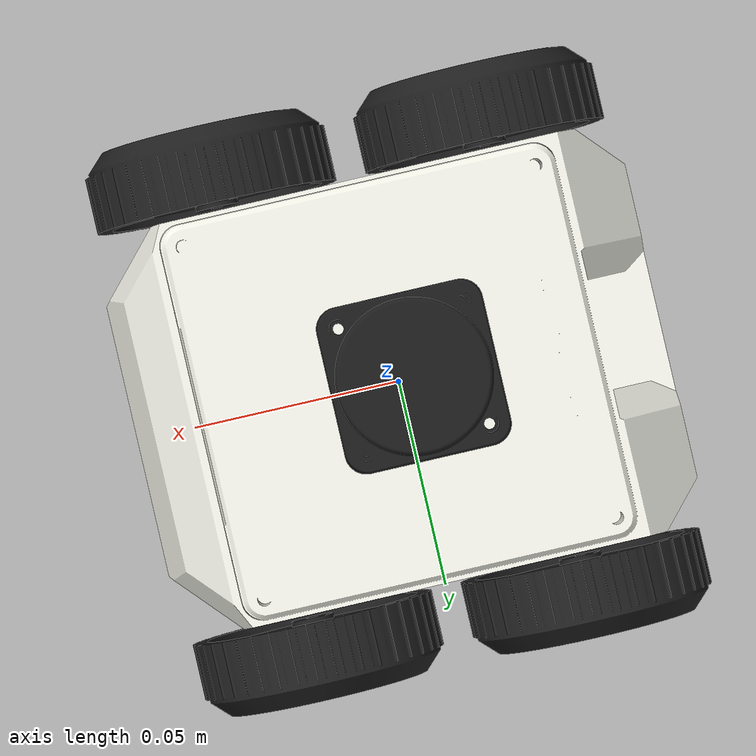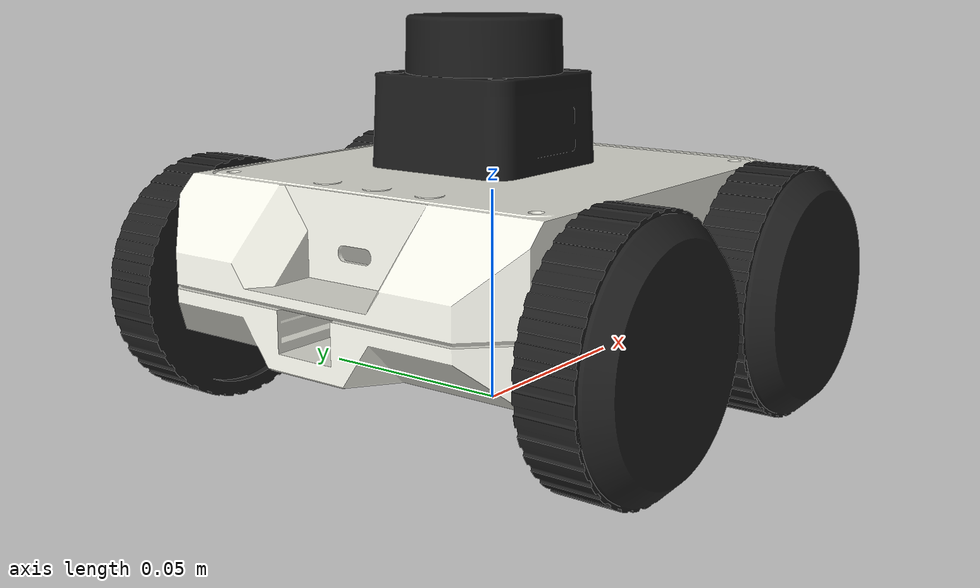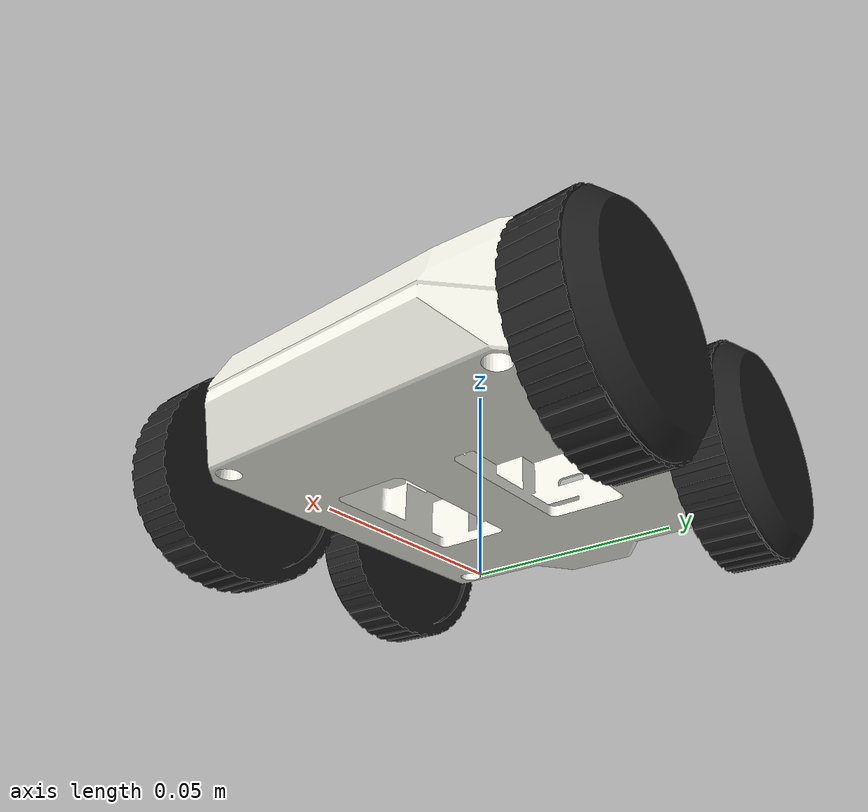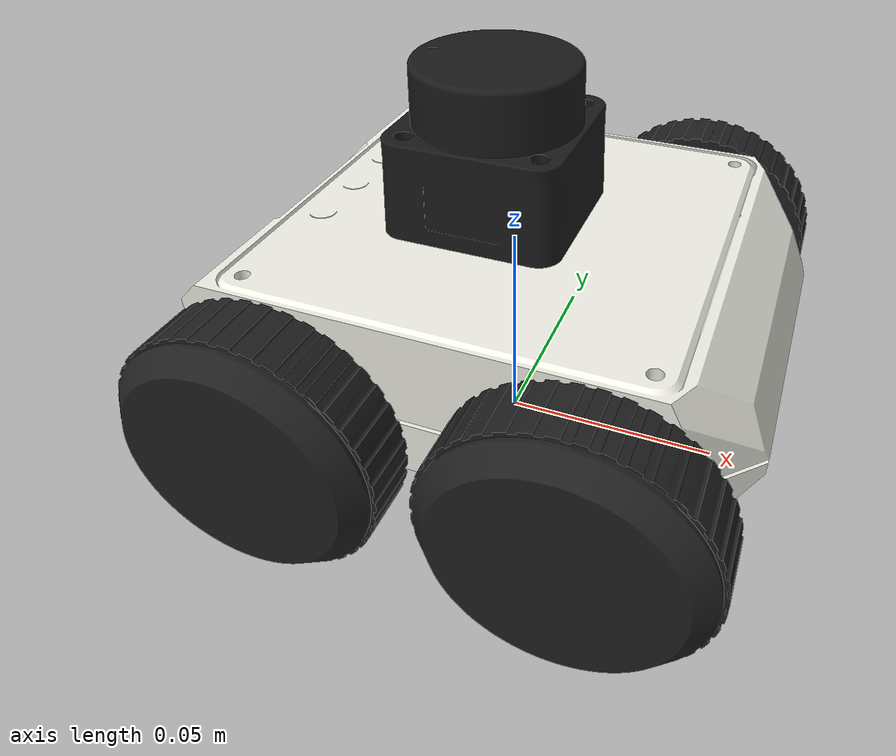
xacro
<?xml version="1.0"?>
<robot xmlns:xacro="http://www.ros.org/wiki/xacro" name="microbot">
  <!--
    Geometry/kinematic parameters taken from:
      MicroBotControl_Lidar/MicroBotControl_Lidar.ino

    ROS frames follow REP-103: x-forward, y-left, z-up.
  -->

  <!-- Firmware-derived dimensions -->
  <xacro:property name="wheel_radius" value="0.0285"/>          <!-- WHEEL_RADIUS_M -->
  <xacro:property name="wheel_track" value="0.116"/>            <!-- WHEEL_BASE_M (left/right contact centers) -->
  <xacro:property name="wheelbase" value="0.064"/>              <!-- CHASSIS_FRONT_BACK_M (front/back contact spacing) -->
  <xacro:property name="lidar_mount_yaw_deg" value="-90.0"/>    <!-- LIDAR_MOUNT_ROTATION_DEG=+90 in firmware (mounted 90 deg right) -->

  <!-- Model-only parameters (not present in firmware) -->
  <xacro:property name="wheel_width" value="0.018"/>
  <xacro:property name="chassis_height" value="0.0336"/>
  <xacro:property name="chassis_length" value="0.124"/>
  <xacro:property name="chassis_width" value="0.094"/>
  <xacro:property name="wheel_center_above_body_base" value="0.008"/>
  <xacro:property name="body_base_ground_clearance" value="${wheel_radius - wheel_center_above_body_base}"/>
  <xacro:property name="body_mesh_origin_x" value="-0.00395202"/>
  <xacro:property name="body_mesh_origin_y" value="-0.00868179"/>
  <xacro:property name="body_mesh_origin_z" value="0.0065"/>
  <xacro:property name="wheel_mesh_origin_y" value="-0.009"/>
  <xacro:property name="lidar_mesh_origin_x" value="-0.016"/>
  <xacro:property name="lidar_mesh_origin_y" value="0.025"/>
  <xacro:property name="lidar_mesh_origin_z" value="-0.015"/>
  <xacro:property name="lidar_mesh_height" value="0.0"/>

  <!-- Mass/inertia placeholders for visualization/TF (tune if using dynamics) -->
  <xacro:property name="chassis_mass" value="0.35"/>
  <xacro:property name="wheel_mass" value="0.04"/>

  <xacro:arg name="use_ros2_control" default="true"/>
  <material name="microbot_white">
    <color rgba="0.94 0.94 0.90 1.0"/>
  </material>
  <material name="microbot_black">
    <color rgba="0.1 0.1 0.1 1.0"/>
  </material>
  <material name="microbot_gray">
    <color rgba="0.45 0.48 0.50 1.0"/>
  </material>
  <material name="microbot_wheel_dark_gray">
    <color rgba="0.12 0.12 0.12 1.0"/>
  </material>

  <link name="base_footprint"/>

  <link name="base_link">
    <visual>
      <origin xyz="${body_mesh_origin_x} ${body_mesh_origin_y} ${body_mesh_origin_z}" rpy="0 0 -1.57079632679"/>
      <geometry>
        <mesh filename="package://microbot_description/meshes/RobotBodt.stl" scale="0.001 0.001 0.001"/>
      </geometry>
      <material name="microbot_white"/>
    </visual>
    <collision>
      <origin xyz="0 0 ${chassis_height/2.0}" rpy="0 0 0"/>
      <geometry>
        <box size="${chassis_length} ${chassis_width} ${chassis_height}"/>
      </geometry>
    </collision>
    <inertial>
      <origin xyz="0 0 ${chassis_height/2.0}" rpy="0 0 0"/>
      <mass value="${chassis_mass}"/>
      <inertia
        ixx="${(1.0/12.0)*chassis_mass*(chassis_width*chassis_width + chassis_height*chassis_height)}"
        ixy="0" ixz="0"
        iyy="${(1.0/12.0)*chassis_mass*(chassis_length*chassis_length + chassis_height*chassis_height)}"
        iyz="0"
        izz="${(1.0/12.0)*chassis_mass*(chassis_length*chassis_length + chassis_width*chassis_width)}"/>
    </inertial>
  </link>

  <joint name="base_footprint_joint" type="fixed">
    <parent link="base_footprint"/>
    <child link="base_link"/>
    <origin xyz="0 0 ${body_base_ground_clearance}" rpy="0 0 0"/>
  </joint>

  <xacro:macro name="wheel" params="name x y visual_y visual_rpy visual_scale">
    <link name="${name}_link">
      <visual>
        <origin xyz="0 ${visual_y} 0" rpy="${visual_rpy}"/>
        <geometry>
          <mesh filename="package://microbot_description/meshes/Wheel.stl" scale="${visual_scale}"/>
        </geometry>
        <material name="microbot_wheel_dark_gray"/>
      </visual>
      <collision>
        <origin xyz="0 0 0" rpy="-1.57079632679 0 0"/>
        <geometry>
          <cylinder radius="${wheel_radius}" length="${wheel_width}"/>
        </geometry>
      </collision>
      <inertial>
        <origin xyz="0 0 0" rpy="0 0 0"/>
        <mass value="${wheel_mass}"/>
        <inertia
          ixx="${(1.0/12.0)*wheel_mass*(3*wheel_radius*wheel_radius + wheel_width*wheel_width)}"
          ixy="0" ixz="0"
          iyy="${0.5*wheel_mass*wheel_radius*wheel_radius}"
          iyz="0"
          izz="${(1.0/12.0)*wheel_mass*(3*wheel_radius*wheel_radius + wheel_width*wheel_width)}"/>
      </inertial>
    </link>

    <joint name="${name}_joint" type="continuous">
      <parent link="base_link"/>
      <child link="${name}_link"/>
      <origin xyz="${x} ${y} ${wheel_center_above_body_base}" rpy="0 0 0"/>
      <axis xyz="0 1 0"/>
      <dynamics damping="0.02" friction="0.01"/>
    </joint>
  </xacro:macro>

  <xacro:wheel name="left_front_wheel"  x="${ wheelbase/2.0}" y="${ wheel_track/2.0}" visual_y="${-wheel_width/2.0}" visual_rpy="-1.57079632679 0 0" visual_scale="0.001 0.001 0.001"/>
  <xacro:wheel name="left_rear_wheel"   x="${-wheelbase/2.0}" y="${ wheel_track/2.0}" visual_y="${-wheel_width/2.0}" visual_rpy="-1.57079632679 0 0" visual_scale="0.001 0.001 0.001"/>
  <xacro:wheel name="right_front_wheel" x="${ wheelbase/2.0}" y="${-wheel_track/2.0}" visual_y="${wheel_width/2.0}" visual_rpy="1.57079632679 0 0" visual_scale="0.001 0.001 0.001"/>
  <xacro:wheel name="right_rear_wheel"  x="${-wheelbase/2.0}" y="${-wheel_track/2.0}" visual_y="${wheel_width/2.0}" visual_rpy="1.57079632679 0 0" visual_scale="0.001 0.001 0.001"/>

  <link name="imu_link"/>
  <joint name="imu_joint" type="fixed">
    <parent link="base_link"/>
    <child link="imu_link"/>
    <origin xyz="0 0 ${chassis_height}" rpy="0 0 0"/>
  </joint>

  <link name="lidar_link">
    <visual>
      <origin xyz="${lidar_mesh_origin_x} ${lidar_mesh_origin_y} ${lidar_mesh_origin_z}" rpy="1.57079632679 0 0"/>
      <geometry>
        <mesh filename="package://microbot_description/meshes/LiDAR.stl" scale="0.001 0.001 0.001"/>
      </geometry>
      <material name="microbot_black"/>
    </visual>
    <collision>
      <origin xyz="0 0 0" rpy="0 0 0"/>
      <geometry>
        <cylinder radius="0.020" length="0.030"/>
      </geometry>
    </collision>
  </link>
  <joint name="lidar_joint" type="fixed">
    <parent link="base_link"/>
    <child link="lidar_link"/>
    <origin xyz="0 0 ${chassis_height + lidar_mesh_height/2.0 + 0.014}" rpy="0 0 ${lidar_mount_yaw_deg*3.14159265359/180.0}"/>
  </joint>

  <gazebo reference="base_link">
    <material>Gazebo/White</material>
  </gazebo>
  <gazebo reference="left_front_wheel_link">
    <material>Gazebo/DarkGrey</material>
  </gazebo>
  <gazebo reference="left_rear_wheel_link">
    <material>Gazebo/DarkGrey</material>
  </gazebo>
  <gazebo reference="right_front_wheel_link">
    <material>Gazebo/DarkGrey</material>
  </gazebo>
  <gazebo reference="right_rear_wheel_link">
    <material>Gazebo/DarkGrey</material>
  </gazebo>

  <gazebo reference="lidar_link">
    <material>Gazebo/FlatBlack</material>
    <sensor name="ld06_lidar" type="gpu_lidar">
      <pose>0 0 0 0 0 0</pose>
      <topic>scan</topic>
      <gz_frame_id>lidar_link</gz_frame_id>
      <update_rate>10</update_rate>
      <ray>
        <scan>
          <horizontal>
            <samples>360</samples>
            <resolution>1</resolution>
            <min_angle>-3.14159</min_angle>
            <max_angle>3.14159</max_angle>
          </horizontal>
        </scan>
        <range>
          <min>0.08</min>
          <max>8.0</max>
          <resolution>0.01</resolution>
        </range>
      </ray>
      <always_on>true</always_on>
      <visualize>true</visualize>
    </sensor>
  </gazebo>

  <gazebo reference="imu_link">
    <sensor name="imu" type="imu">
      <topic>imu</topic>
      <update_rate>50</update_rate>
      <always_on>true</always_on>
    </sensor>
  </gazebo>

  <gazebo>
    <plugin filename="gz-sim-diff-drive-system" name="gz::sim::systems::DiffDrive">
      <left_joint>left_front_wheel_joint</left_joint>
      <left_joint>left_rear_wheel_joint</left_joint>
      <right_joint>right_front_wheel_joint</right_joint>
      <right_joint>right_rear_wheel_joint</right_joint>
      <wheel_separation>${wheel_track}</wheel_separation>
      <wheel_radius>${wheel_radius}</wheel_radius>
      <max_linear_acceleration>0.8</max_linear_acceleration>
      <min_linear_acceleration>-0.8</min_linear_acceleration>
      <max_angular_acceleration>5.0</max_angular_acceleration>
      <min_angular_acceleration>-5.0</min_angular_acceleration>
      <max_linear_velocity>0.35</max_linear_velocity>
      <min_linear_velocity>-0.35</min_linear_velocity>
      <max_angular_velocity>2.5</max_angular_velocity>
      <min_angular_velocity>-2.5</min_angular_velocity>
      <topic>/diff_drive_controller/cmd_vel_unstamped</topic>
      <odom_topic>odom</odom_topic>
      <tf_topic>tf</tf_topic>
      <frame_id>odom</frame_id>
      <child_frame_id>base_footprint</child_frame_id>
      <odom_publish_frequency>50</odom_publish_frequency>
    </plugin>
  </gazebo>

  <xacro:if value="$(arg use_ros2_control)">
    <ros2_control name="MicrobotSystem" type="system">
      <hardware>
        <plugin>gz_ros2_control/GazeboSimSystem</plugin>
      </hardware>
      <joint name="left_front_wheel_joint">
        <command_interface name="velocity"/>
        <state_interface name="position"/>
        <state_interface name="velocity"/>
      </joint>
      <joint name="left_rear_wheel_joint">
        <command_interface name="velocity"/>
        <state_interface name="position"/>
        <state_interface name="velocity"/>
      </joint>
      <joint name="right_front_wheel_joint">
        <command_interface name="velocity"/>
        <state_interface name="position"/>
        <state_interface name="velocity"/>
      </joint>
      <joint name="right_rear_wheel_joint">
        <command_interface name="velocity"/>
        <state_interface name="position"/>
        <state_interface name="velocity"/>
      </joint>
    </ros2_control>

    <gazebo>
      <plugin filename="gz_ros2_control-system" name="gz_ros2_control::GazeboSimROS2ControlPlugin">
        <parameters>$(find microbot_description)/config/ros2_control.yaml</parameters>
      </plugin>
    </gazebo>
  </xacro:if>
</robot>
